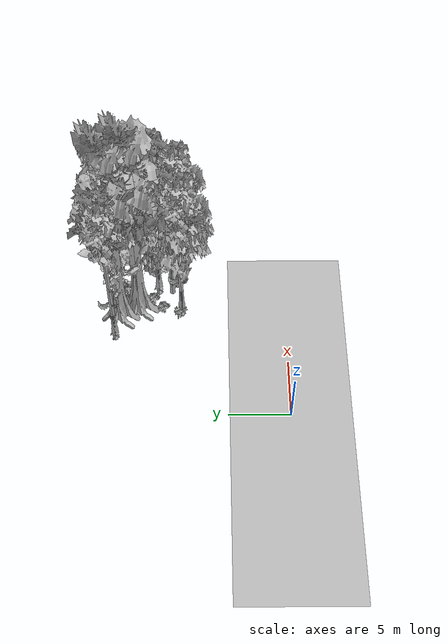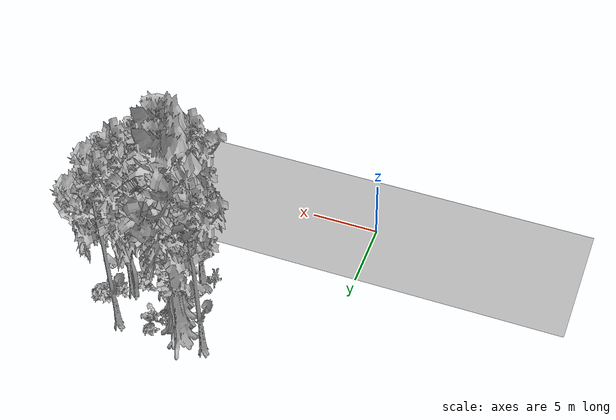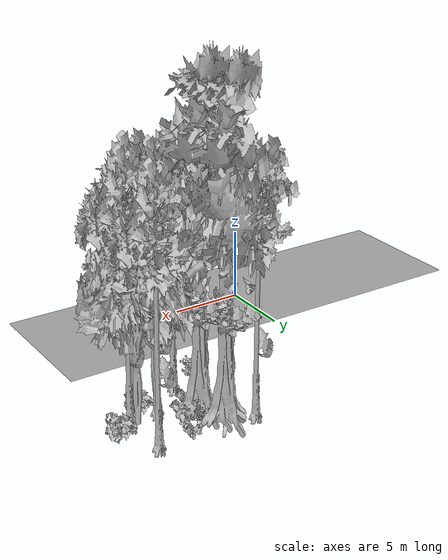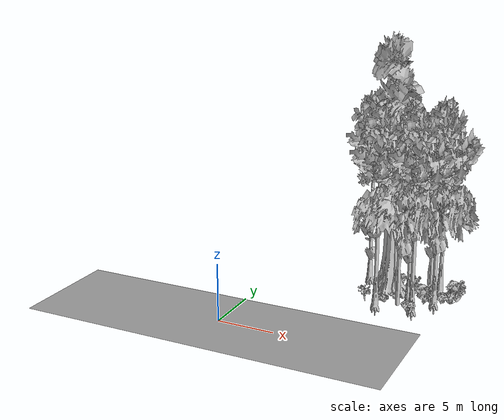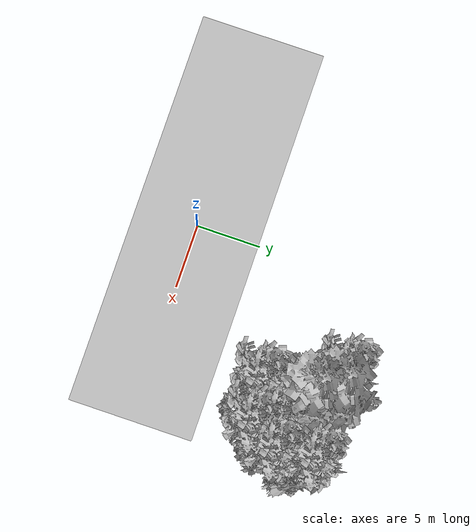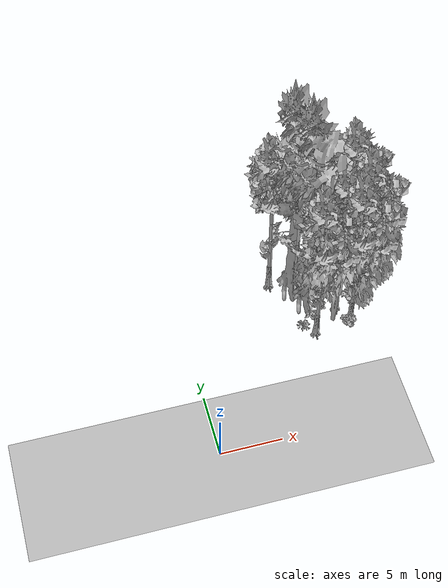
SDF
<sdf version="1.7">
 <world name="default">
  <model name="ground_plane">
   <static>1</static>
   <link name="link">
    <collision name="collision">
     <geometry><plane><normal>0 0 1</normal><size>100 100</size></plane></geometry>
     <surface><contact><ode><min_depth>0.01</min_depth><max_vel>0</max_vel></ode></contact></surface>
    </collision>
    <visual name="grass">
     <cast_shadows>0</cast_shadows>
     <geometry>
      <mesh>
       <scale>0.5814285714285714 0.18142857142857144 0.1</scale>
       <uri>file://grass_plane/meshes/grass_plane.dae</uri>
      </mesh>
     </geometry>
    </visual>
   </link>
  </model>
  <model name="Tree 127">
   <static>1</static>
   <pose>14.459440531861404 11.541870824293774 0 1.57079 -0 0</pose>
   <link name="link">
    <collision name="collision">
     <geometry><mesh><scale>3.5 5 3.5</scale><uri>model://tree_2/meshes/tree_2.obj</uri></mesh></geometry>
    </collision>
    <visual name="visual">
     <geometry><mesh><scale>3.5 5 3.5</scale><uri>model://tree_2/meshes/tree_2.obj</uri></mesh></geometry>
    </visual>
   </link>
  </model>
  <model name="Tree 136">
   <static>1</static>
   <pose>12.150639827626392 9.625878430887706 0 1.57079 -0 0</pose>
   <link name="link">
    <collision name="collision">
     <geometry><mesh><scale>3.5 5 3.5</scale><uri>model://tree_2/meshes/tree_2.obj</uri></mesh></geometry>
    </collision>
    <visual name="visual">
     <geometry><mesh><scale>3.5 5 3.5</scale><uri>model://tree_2/meshes/tree_2.obj</uri></mesh></geometry>
    </visual>
   </link>
  </model>
  <model name="Tree 216">
   <static>1</static>
   <pose>13.584669764012666 9.27257365885562 0 1.57079 -0 0</pose>
   <link name="link">
    <collision name="collision">
     <geometry><mesh><scale>3.5 5 3.5</scale><uri>model://tree_9/meshes/tree_9.obj</uri></mesh></geometry>
    </collision>
    <visual name="visual">
     <geometry><mesh><scale>3.5 5 3.5</scale><uri>model://tree_9/meshes/tree_9.obj</uri></mesh></geometry>
    </visual>
   </link>
  </model>
  <model name="Tree 226">
   <static>1</static>
   <pose>12.829767708964802 10.822765708642844 0 1.57079 -0 0</pose>
   <link name="link">
    <collision name="collision">
     <geometry><mesh><scale>3.5 5 3.5</scale><uri>model://tree_9/meshes/tree_9.obj</uri></mesh></geometry>
    </collision>
    <visual name="visual">
     <geometry><mesh><scale>3.5 5 3.5</scale><uri>model://tree_9/meshes/tree_9.obj</uri></mesh></geometry>
    </visual>
   </link>
  </model>
  <model name="Tree 250">
   <static>1</static>
   <pose>14.697941901481123 14.29873100783453 0 1.57079 -0 0</pose>
   <link name="link">
    <collision name="collision">
     <geometry><mesh><scale>3.5 5 3.5</scale><uri>model://tree_9/meshes/tree_9.obj</uri></mesh></geometry>
    </collision>
    <visual name="visual">
     <geometry><mesh><scale>3.5 5 3.5</scale><uri>model://tree_9/meshes/tree_9.obj</uri></mesh></geometry>
    </visual>
   </link>
  </model>
  <model name="Tree 313">
   <static>1</static>
   <pose>8.05701851495153 14.422031977928889 0 1.57079 -0 0</pose>
   <link name="link">
    <collision name="collision">
     <geometry><mesh><scale>3.5 5 3.5</scale><uri>model://tree_9/meshes/tree_9.obj</uri></mesh></geometry>
    </collision>
    <visual name="visual">
     <geometry><mesh><scale>3.5 5 3.5</scale><uri>model://tree_9/meshes/tree_9.obj</uri></mesh></geometry>
    </visual>
   </link>
  </model>
  <model name="Tree 392">
   <static>1</static>
   <pose>9.90387639928624 14.01465851800651 0 1.57079 -0 0</pose>
   <link name="link">
    <collision name="collision">
     <geometry><mesh><scale>3.5 5 3.5</scale><uri>model://tree_4/meshes/tree_4.obj</uri></mesh></geometry>
    </collision>
    <visual name="visual">
     <geometry><mesh><scale>3.5 5 3.5</scale><uri>model://tree_4/meshes/tree_4.obj</uri></mesh></geometry>
    </visual>
   </link>
  </model>
  <model name="Tree 398">
   <static>1</static>
   <pose>14.947297971231585 11.331241420861307 0 1.57079 -0 0</pose>
   <link name="link">
    <collision name="collision">
     <geometry><mesh><scale>3.5 5 3.5</scale><uri>model://tree_9/meshes/tree_9.obj</uri></mesh></geometry>
    </collision>
    <visual name="visual">
     <geometry><mesh><scale>3.5 5 3.5</scale><uri>model://tree_9/meshes/tree_9.obj</uri></mesh></geometry>
    </visual>
   </link>
  </model>
  <model name="Tree 426">
   <static>1</static>
   <pose>10.49891373664888 8.834849236779569 0 1.57079 -0 0</pose>
   <link name="link">
    <collision name="collision">
     <geometry><mesh><scale>3.5 5 3.5</scale><uri>model://tree_9/meshes/tree_9.obj</uri></mesh></geometry>
    </collision>
    <visual name="visual">
     <geometry><mesh><scale>3.5 5 3.5</scale><uri>model://tree_9/meshes/tree_9.obj</uri></mesh></geometry>
    </visual>
   </link>
  </model>
  <model name="Tree 446">
   <static>1</static>
   <pose>10.715725013111609 12.420867935372055 0 1.57079 -0 0</pose>
   <link name="link">
    <collision name="collision">
     <geometry><mesh><scale>3.5 5 3.5</scale><uri>model://tree_4/meshes/tree_4.obj</uri></mesh></geometry>
    </collision>
    <visual name="visual">
     <geometry><mesh><scale>3.5 5 3.5</scale><uri>model://tree_4/meshes/tree_4.obj</uri></mesh></geometry>
    </visual>
   </link>
  </model>
  <model name="Bush 0">
   <static>1</static>
   <pose>12.2645992679832 14.10133658501507 0 1.57079 -0 0</pose>
   <link name="link">
    <collision name="collision">
     <geometry><mesh><scale>2 2 2</scale><uri>model://bush_2/meshes/bush_2.obj</uri></mesh></geometry>
     <surface><contact><collide_without_contact>false</collide_without_contact></contact></surface>
    </collision>
    <visual name="visual">
     <geometry><mesh><scale>2 2 2</scale><uri>model://bush_2/meshes/bush_2.obj</uri></mesh></geometry>
    </visual>
   </link>
  </model>
  <model name="Bush 29">
   <static>1</static>
   <pose>16.45546392058874 12.699096416880622 0 1.57079 -0 0</pose>
   <link name="link">
    <collision name="collision">
     <geometry><mesh><scale>2 2 2</scale><uri>model://bush_1/meshes/bush_1.obj</uri></mesh></geometry>
     <surface><contact><collide_without_contact>false</collide_without_contact></contact></surface>
    </collision>
    <visual name="visual">
     <geometry><mesh><scale>2 2 2</scale><uri>model://bush_1/meshes/bush_1.obj</uri></mesh></geometry>
    </visual>
   </link>
  </model>
  <model name="Bush 31">
   <static>1</static>
   <pose>9.47163638981641 9.135445246434113 0 1.57079 -0 0</pose>
   <link name="link">
    <collision name="collision">
     <geometry><mesh><scale>2 2 2</scale><uri>model://bush_5/meshes/bush_5.obj</uri></mesh></geometry>
     <surface><contact><collide_without_contact>false</collide_without_contact></contact></surface>
    </collision>
    <visual name="visual">
     <geometry><mesh><scale>2 2 2</scale><uri>model://bush_5/meshes/bush_5.obj</uri></mesh></geometry>
    </visual>
   </link>
  </model>
  <model name="Bush 34">
   <static>1</static>
   <pose>13.427010713432871 9.013944533984041 0 1.57079 -0 0</pose>
   <link name="link">
    <collision name="collision">
     <geometry><mesh><scale>2 2 2</scale><uri>model://bush_3/meshes/bush_3.obj</uri></mesh></geometry>
     <surface><contact><collide_without_contact>false</collide_without_contact></contact></surface>
    </collision>
    <visual name="visual">
     <geometry><mesh><scale>2 2 2</scale><uri>model://bush_3/meshes/bush_3.obj</uri></mesh></geometry>
    </visual>
   </link>
  </model>
  <model name="Bush 131">
   <static>1</static>
   <pose>12.563562139197309 13.539769982670002 0 1.57079 -0 0</pose>
   <link name="link">
    <collision name="collision">
     <geometry><mesh><scale>2 2 2</scale><uri>model://bush_0/meshes/bush_0.obj</uri></mesh></geometry>
     <surface><contact><collide_without_contact>false</collide_without_contact></contact></surface>
    </collision>
    <visual name="visual">
     <geometry><mesh><scale>2 2 2</scale><uri>model://bush_0/meshes/bush_0.obj</uri></mesh></geometry>
    </visual>
   </link>
  </model>
  <model name="Bush 151">
   <static>1</static>
   <pose>11.550943299966647 11.252723227097444 0 1.57079 -0 0</pose>
   <link name="link">
    <collision name="collision">
     <geometry><mesh><scale>2 2 2</scale><uri>model://bush_2/meshes/bush_2.obj</uri></mesh></geometry>
     <surface><contact><collide_without_contact>false</collide_without_contact></contact></surface>
    </collision>
    <visual name="visual">
     <geometry><mesh><scale>2 2 2</scale><uri>model://bush_2/meshes/bush_2.obj</uri></mesh></geometry>
    </visual>
   </link>
  </model>
  <model name="Bush 202">
   <static>1</static>
   <pose>16.26644468533867 11.819430016839263 0 1.57079 -0 0</pose>
   <link name="link">
    <collision name="collision">
     <geometry><mesh><scale>2 2 2</scale><uri>model://bush_4/meshes/bush_4.obj</uri></mesh></geometry>
     <surface><contact><collide_without_contact>false</collide_without_contact></contact></surface>
    </collision>
    <visual name="visual">
     <geometry><mesh><scale>2 2 2</scale><uri>model://bush_4/meshes/bush_4.obj</uri></mesh></geometry>
    </visual>
   </link>
  </model>
  <model name="Bush 219">
   <static>1</static>
   <pose>10.638524821205365 10.381416989104483 0 1.57079 -0 0</pose>
   <link name="link">
    <collision name="collision">
     <geometry><mesh><scale>2 2 2</scale><uri>model://bush_2/meshes/bush_2.obj</uri></mesh></geometry>
     <surface><contact><collide_without_contact>false</collide_without_contact></contact></surface>
    </collision>
    <visual name="visual">
     <geometry><mesh><scale>2 2 2</scale><uri>model://bush_2/meshes/bush_2.obj</uri></mesh></geometry>
    </visual>
   </link>
  </model>
  <model name="Bush 253">
   <static>1</static>
   <pose>15.674619988619298 11.817936202180235 0 1.57079 -0 0</pose>
   <link name="link">
    <collision name="collision">
     <geometry><mesh><scale>2 2 2</scale><uri>model://bush_3/meshes/bush_3.obj</uri></mesh></geometry>
     <surface><contact><collide_without_contact>false</collide_without_contact></contact></surface>
    </collision>
    <visual name="visual">
     <geometry><mesh><scale>2 2 2</scale><uri>model://bush_3/meshes/bush_3.obj</uri></mesh></geometry>
    </visual>
   </link>
  </model>
  <model name="Bush 265">
   <static>1</static>
   <pose>14.216433835954923 10.765219952196482 0 1.57079 -0 0</pose>
   <link name="link">
    <collision name="collision">
     <geometry><mesh><scale>2 2 2</scale><uri>model://bush_1/meshes/bush_1.obj</uri></mesh></geometry>
     <surface><contact><collide_without_contact>false</collide_without_contact></contact></surface>
    </collision>
    <visual name="visual">
     <geometry><mesh><scale>2 2 2</scale><uri>model://bush_1/meshes/bush_1.obj</uri></mesh></geometry>
    </visual>
   </link>
  </model>
  <model name="Bush 335">
   <static>1</static>
   <pose>11.332296639066428 13.294850606393297 0 1.57079 -0 0</pose>
   <link name="link">
    <collision name="collision">
     <geometry><mesh><scale>2 2 2</scale><uri>model://bush_4/meshes/bush_4.obj</uri></mesh></geometry>
     <surface><contact><collide_without_contact>false</collide_without_contact></contact></surface>
    </collision>
    <visual name="visual">
     <geometry><mesh><scale>2 2 2</scale><uri>model://bush_4/meshes/bush_4.obj</uri></mesh></geometry>
    </visual>
   </link>
  </model>
 </world>
</sdf>
